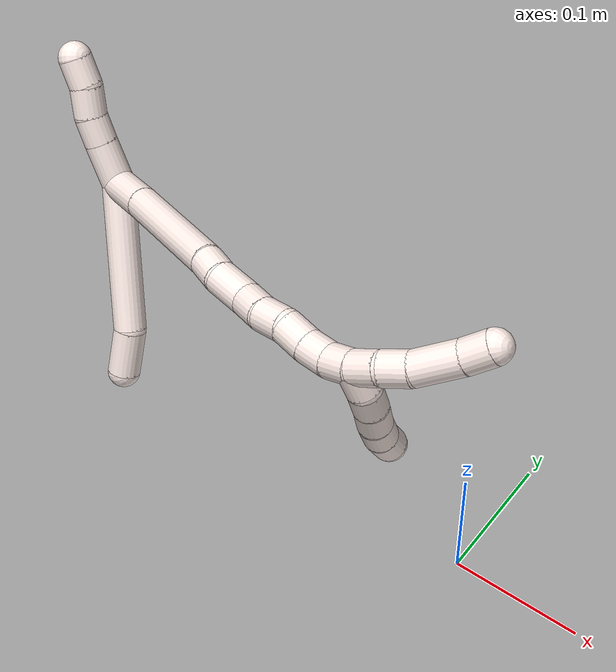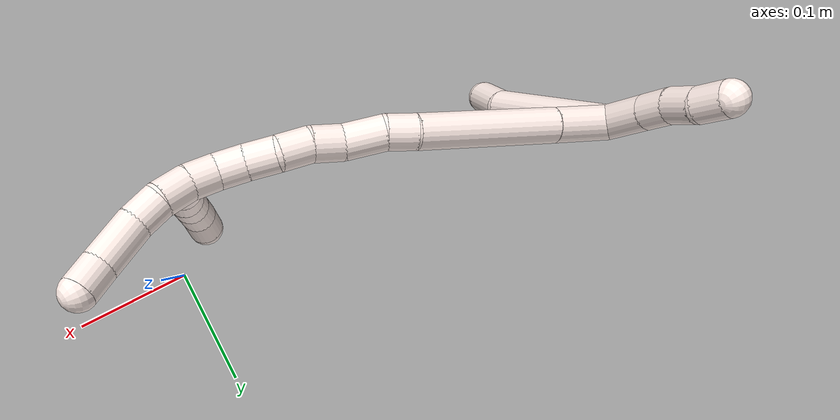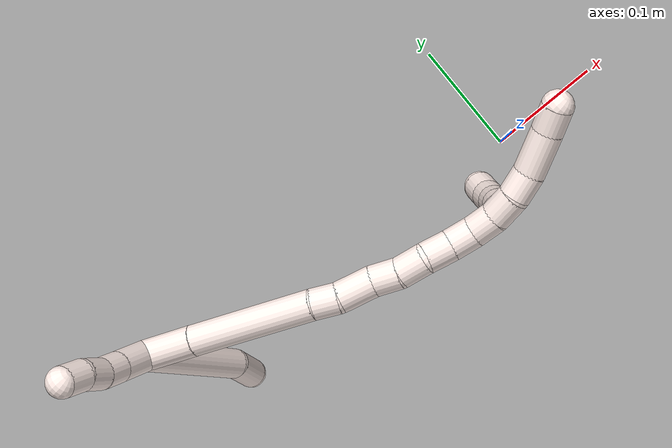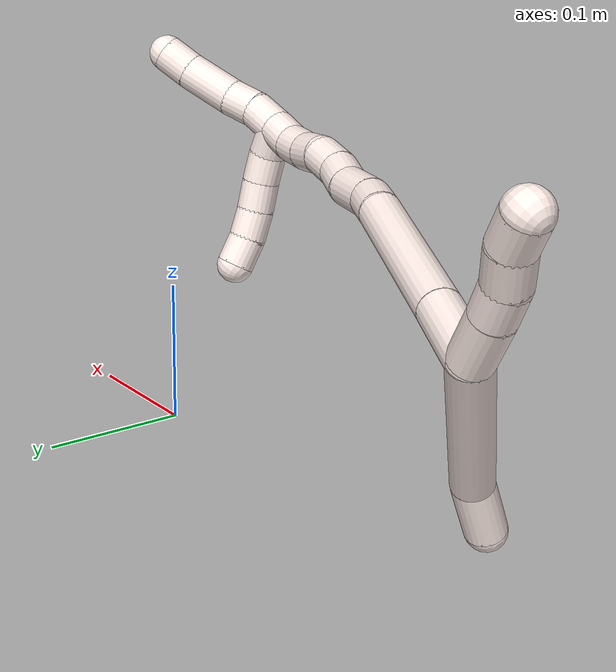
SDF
<sdf version="1.7">
 <world name="default">
  <model name="11">
   <static>0</static>
   <link name="11">
    <collision name="collision-cylinder-e_1_2_8">
     <pose>0.00716 -0.055685 0.006645 1.45203 0.126986 0.112766</pose>
     <geometry><cylinder><radius>0.0125</radius><length>0.113071</length></cylinder></geometry>
     <surface>
      <friction><ode><mu>1.16</mu><mu2>1.16</mu2><slip1>0</slip1><slip2>0</slip2></ode></friction>
      <contact><ode><kp>1e+06</kp><kd>1</kd><max_vel>0</max_vel><min_depth>0.001</min_depth></ode></contact>
     </surface>
    </collision>
    <visual name="visual-cylinder-e_1_2_8">
     <pose>0.00716 -0.055685 0.006645 1.45203 0.126986 0.112766</pose>
     <geometry><cylinder><radius>0.0125</radius><length>0.113071</length></cylinder></geometry>
     <material><ambient>1 0.933333 0.909804 1</ambient></material>
    </visual>
    <collision name="collision-cylinder-e_2_8_6">
     <pose>0.016491 -0.12811 0.020773 1.15043 0.117865 0.076469</pose>
     <geometry><cylinder><radius>0.0125</radius><length>0.036929</length></cylinder></geometry>
     <surface>
      <friction><ode><mu>1.16</mu><mu2>1.16</mu2><slip1>0</slip1><slip2>0</slip2></ode></friction>
      <contact><ode><kp>1e+06</kp><kd>1</kd><max_vel>0</max_vel><min_depth>0.001</min_depth></ode></contact>
     </surface>
    </collision>
    <visual name="visual-cylinder-e_2_8_6">
     <pose>0.016491 -0.12811 0.020773 1.15043 0.117865 0.076469</pose>
     <geometry><cylinder><radius>0.0125</radius><length>0.036929</length></cylinder></geometry>
     <material><ambient>1 0.933333 0.909804 1</ambient></material>
    </visual>
    <collision name="collision-cylinder-e_1_2_9">
     <pose>0.002594 0.016786 0.000653 -1.5319 0.153203 -0.147378</pose>
     <geometry><cylinder><radius>0.0125</radius><length>0.033997</length></cylinder></geometry>
     <surface>
      <friction><ode><mu>1.16</mu><mu2>1.16</mu2><slip1>0</slip1><slip2>0</slip2></ode></friction>
      <contact><ode><kp>1e+06</kp><kd>1</kd><max_vel>0</max_vel><min_depth>0.001</min_depth></ode></contact>
     </surface>
    </collision>
    <visual name="visual-cylinder-e_1_2_9">
     <pose>0.002594 0.016786 0.000653 -1.5319 0.153203 -0.147378</pose>
     <geometry><cylinder><radius>0.0125</radius><length>0.033997</length></cylinder></geometry>
     <material><ambient>1 0.933333 0.909804 1</ambient></material>
    </visual>
    <collision name="collision-cylinder-e_2_9_10">
     <pose>0.006834 0.044039 0.00123 -1.57815 0.156013 -0.157161</pose>
     <geometry><cylinder><radius>0.0125</radius><length>0.02119</length></cylinder></geometry>
     <surface>
      <friction><ode><mu>1.16</mu><mu2>1.16</mu2><slip1>0</slip1><slip2>0</slip2></ode></friction>
      <contact><ode><kp>1e+06</kp><kd>1</kd><max_vel>0</max_vel><min_depth>0.001</min_depth></ode></contact>
     </surface>
    </collision>
    <visual name="visual-cylinder-e_2_9_10">
     <pose>0.006834 0.044039 0.00123 -1.57815 0.156013 -0.157161</pose>
     <geometry><cylinder><radius>0.0125</radius><length>0.02119</length></cylinder></geometry>
     <material><ambient>1 0.933333 0.909804 1</ambient></material>
    </visual>
    <collision name="collision-cylinder-e_3_10_11">
     <pose>0.008546 0.065796 -0.000673 -1.73111 0.00573 -0.006731</pose>
     <geometry><cylinder><radius>0.0125</radius><length>0.022875</length></cylinder></geometry>
     <surface>
      <friction><ode><mu>1.16</mu><mu2>1.16</mu2><slip1>0</slip1><slip2>0</slip2></ode></friction>
      <contact><ode><kp>1e+06</kp><kd>1</kd><max_vel>0</max_vel><min_depth>0.001</min_depth></ode></contact>
     </surface>
    </collision>
    <visual name="visual-cylinder-e_3_10_11">
     <pose>0.008546 0.065796 -0.000673 -1.73111 0.00573 -0.006731</pose>
     <geometry><cylinder><radius>0.0125</radius><length>0.022875</length></cylinder></geometry>
     <material><ambient>1 0.933333 0.909804 1</ambient></material>
    </visual>
    <collision name="collision-cylinder-e_4_11_5">
     <pose>0.009849 0.087972 -0.001949 -1.52031 0.113017 -0.107462</pose>
     <geometry><cylinder><radius>0.0125</radius><length>0.021939</length></cylinder></geometry>
     <surface>
      <friction><ode><mu>1.16</mu><mu2>1.16</mu2><slip1>0</slip1><slip2>0</slip2></ode></friction>
      <contact><ode><kp>1e+06</kp><kd>1</kd><max_vel>0</max_vel><min_depth>0.001</min_depth></ode></contact>
     </surface>
    </collision>
    <visual name="visual-cylinder-e_4_11_5">
     <pose>0.009849 0.087972 -0.001949 -1.52031 0.113017 -0.107462</pose>
     <geometry><cylinder><radius>0.0125</radius><length>0.021939</length></cylinder></geometry>
     <material><ambient>1 0.933333 0.909804 1</ambient></material>
    </visual>
    <collision name="collision-cylinder-e_1_2_12">
     <pose>0.007084 -0.006461 -0.019183 2.81671 0.336627 1.60696</pose>
     <geometry><cylinder><radius>0.0125</radius><length>0.042891</length></cylinder></geometry>
     <surface>
      <friction><ode><mu>1.16</mu><mu2>1.16</mu2><slip1>0</slip1><slip2>0</slip2></ode></friction>
      <contact><ode><kp>1e+06</kp><kd>1</kd><max_vel>0</max_vel><min_depth>0.001</min_depth></ode></contact>
     </surface>
    </collision>
    <visual name="visual-cylinder-e_1_2_12">
     <pose>0.007084 -0.006461 -0.019183 2.81671 0.336627 1.60696</pose>
     <geometry><cylinder><radius>0.0125</radius><length>0.042891</length></cylinder></geometry>
     <material><ambient>1 0.933333 0.909804 1</ambient></material>
    </visual>
    <collision name="collision-cylinder-e_2_12_13">
     <pose>0.030875 -0.02989 -0.082806 2.77687 0.33777 1.49251</pose>
     <geometry><cylinder><radius>0.0125</radius><length>0.100836</length></cylinder></geometry>
     <surface>
      <friction><ode><mu>1.16</mu><mu2>1.16</mu2><slip1>0</slip1><slip2>0</slip2></ode></friction>
      <contact><ode><kp>1e+06</kp><kd>1</kd><max_vel>0</max_vel><min_depth>0.001</min_depth></ode></contact>
     </surface>
    </collision>
    <visual name="visual-cylinder-e_2_12_13">
     <pose>0.030875 -0.02989 -0.082806 2.77687 0.33777 1.49251</pose>
     <geometry><cylinder><radius>0.0125</radius><length>0.100836</length></cylinder></geometry>
     <material><ambient>1 0.933333 0.909804 1</ambient></material>
    </visual>
    <collision name="collision-cylinder-e_3_13_14">
     <pose>0.051192 -0.051608 -0.135856 2.63734 0.351763 1.2078</pose>
     <geometry><cylinder><radius>0.0125</radius><length>0.020951</length></cylinder></geometry>
     <surface>
      <friction><ode><mu>1.16</mu><mu2>1.16</mu2><slip1>0</slip1><slip2>0</slip2></ode></friction>
      <contact><ode><kp>1e+06</kp><kd>1</kd><max_vel>0</max_vel><min_depth>0.001</min_depth></ode></contact>
     </surface>
    </collision>
    <visual name="visual-cylinder-e_3_13_14">
     <pose>0.051192 -0.051608 -0.135856 2.63734 0.351763 1.2078</pose>
     <geometry><cylinder><radius>0.0125</radius><length>0.020951</length></cylinder></geometry>
     <material><ambient>1 0.933333 0.909804 1</ambient></material>
    </visual>
    <collision name="collision-cylinder-e_4_14_15">
     <pose>0.056636 -0.063745 -0.156792 2.60175 0.127042 0.451945</pose>
     <geometry><cylinder><radius>0.0125</radius><length>0.028973</length></cylinder></geometry>
     <surface>
      <friction><ode><mu>1.16</mu><mu2>1.16</mu2><slip1>0</slip1><slip2>0</slip2></ode></friction>
      <contact><ode><kp>1e+06</kp><kd>1</kd><max_vel>0</max_vel><min_depth>0.001</min_depth></ode></contact>
     </surface>
    </collision>
    <visual name="visual-cylinder-e_4_14_15">
     <pose>0.056636 -0.063745 -0.156792 2.60175 0.127042 0.451945</pose>
     <geometry><cylinder><radius>0.0125</radius><length>0.028973</length></cylinder></geometry>
     <material><ambient>1 0.933333 0.909804 1</ambient></material>
    </visual>
    <collision name="collision-cylinder-e_5_15_16">
     <pose>0.062067 -0.074906 -0.178791 2.76957 0.333352 1.45896</pose>
     <geometry><cylinder><radius>0.0125</radius><length>0.021976</length></cylinder></geometry>
     <surface>
      <friction><ode><mu>1.16</mu><mu2>1.16</mu2><slip1>0</slip1><slip2>0</slip2></ode></friction>
      <contact><ode><kp>1e+06</kp><kd>1</kd><max_vel>0</max_vel><min_depth>0.001</min_depth></ode></contact>
     </surface>
    </collision>
    <visual name="visual-cylinder-e_5_15_16">
     <pose>0.062067 -0.074906 -0.178791 2.76957 0.333352 1.45896</pose>
     <geometry><cylinder><radius>0.0125</radius><length>0.021976</length></cylinder></geometry>
     <material><ambient>1 0.933333 0.909804 1</ambient></material>
    </visual>
    <collision name="collision-cylinder-e_6_16_17">
     <pose>0.066951 -0.082285 -0.198916 2.80945 0.115987 0.666896</pose>
     <geometry><cylinder><radius>0.0125</radius><length>0.022261</length></cylinder></geometry>
     <surface>
      <friction><ode><mu>1.16</mu><mu2>1.16</mu2><slip1>0</slip1><slip2>0</slip2></ode></friction>
      <contact><ode><kp>1e+06</kp><kd>1</kd><max_vel>0</max_vel><min_depth>0.001</min_depth></ode></contact>
     </surface>
    </collision>
    <visual name="visual-cylinder-e_6_16_17">
     <pose>0.066951 -0.082285 -0.198916 2.80945 0.115987 0.666896</pose>
     <geometry><cylinder><radius>0.0125</radius><length>0.022261</length></cylinder></geometry>
     <material><ambient>1 0.933333 0.909804 1</ambient></material>
    </visual>
    <collision name="collision-cylinder-e_7_17_18">
     <pose>0.069033 -0.092353 -0.21791 2.49396 0.074005 0.219709</pose>
     <geometry><cylinder><radius>0.0125</radius><length>0.021483</length></cylinder></geometry>
     <surface>
      <friction><ode><mu>1.16</mu><mu2>1.16</mu2><slip1>0</slip1><slip2>0</slip2></ode></friction>
      <contact><ode><kp>1e+06</kp><kd>1</kd><max_vel>0</max_vel><min_depth>0.001</min_depth></ode></contact>
     </surface>
    </collision>
    <visual name="visual-cylinder-e_7_17_18">
     <pose>0.069033 -0.092353 -0.21791 2.49396 0.074005 0.219709</pose>
     <geometry><cylinder><radius>0.0125</radius><length>0.021483</length></cylinder></geometry>
     <material><ambient>1 0.933333 0.909804 1</ambient></material>
    </visual>
    <collision name="collision-cylinder-e_8_18_19">
     <pose>0.070492 -0.103408 -0.235484 2.67112 0.065499 0.271698</pose>
     <geometry><cylinder><radius>0.0125</radius><length>0.020306</length></cylinder></geometry>
     <surface>
      <friction><ode><mu>1.16</mu><mu2>1.16</mu2><slip1>0</slip1><slip2>0</slip2></ode></friction>
      <contact><ode><kp>1e+06</kp><kd>1</kd><max_vel>0</max_vel><min_depth>0.001</min_depth></ode></contact>
     </surface>
    </collision>
    <visual name="visual-cylinder-e_8_18_19">
     <pose>0.070492 -0.103408 -0.235484 2.67112 0.065499 0.271698</pose>
     <geometry><cylinder><radius>0.0125</radius><length>0.020306</length></cylinder></geometry>
     <material><ambient>1 0.933333 0.909804 1</ambient></material>
    </visual>
    <collision name="collision-cylinder-e_9_19_1">
     <pose>0.071765 -0.109946 -0.254469 2.94856 0.059904 0.600239</pose>
     <geometry><cylinder><radius>0.0125</radius><length>0.020324</length></cylinder></geometry>
     <surface>
      <friction><ode><mu>1.16</mu><mu2>1.16</mu2><slip1>0</slip1><slip2>0</slip2></ode></friction>
      <contact><ode><kp>1e+06</kp><kd>1</kd><max_vel>0</max_vel><min_depth>0.001</min_depth></ode></contact>
     </surface>
    </collision>
    <visual name="visual-cylinder-e_9_19_1">
     <pose>0.071765 -0.109946 -0.254469 2.94856 0.059904 0.600239</pose>
     <geometry><cylinder><radius>0.0125</radius><length>0.020324</length></cylinder></geometry>
     <material><ambient>1 0.933333 0.909804 1</ambient></material>
    </visual>
    <collision name="collision-cylinder-e_1_1_20">
     <pose>0.071389 -0.112161 -0.275379 3.11704 -0.089571 -2.60675</pose>
     <geometry><cylinder><radius>0.0125</radius><length>0.022004</length></cylinder></geometry>
     <surface>
      <friction><ode><mu>1.16</mu><mu2>1.16</mu2><slip1>0</slip1><slip2>0</slip2></ode></friction>
      <contact><ode><kp>1e+06</kp><kd>1</kd><max_vel>0</max_vel><min_depth>0.001</min_depth></ode></contact>
     </surface>
    </collision>
    <visual name="visual-cylinder-e_1_1_20">
     <pose>0.071389 -0.112161 -0.275379 3.11704 -0.089571 -2.60675</pose>
     <geometry><cylinder><radius>0.0125</radius><length>0.022004</length></cylinder></geometry>
     <material><ambient>1 0.933333 0.909804 1</ambient></material>
    </visual>
    <collision name="collision-cylinder-e_2_20_21">
     <pose>0.067204 -0.113457 -0.29638 3.03977 -0.306946 -2.50516</pose>
     <geometry><cylinder><radius>0.0125</radius><length>0.021187</length></cylinder></geometry>
     <surface>
      <friction><ode><mu>1.16</mu><mu2>1.16</mu2><slip1>0</slip1><slip2>0</slip2></ode></friction>
      <contact><ode><kp>1e+06</kp><kd>1</kd><max_vel>0</max_vel><min_depth>0.001</min_depth></ode></contact>
     </surface>
    </collision>
    <visual name="visual-cylinder-e_2_20_21">
     <pose>0.067204 -0.113457 -0.29638 3.03977 -0.306946 -2.50516</pose>
     <geometry><cylinder><radius>0.0125</radius><length>0.021187</length></cylinder></geometry>
     <material><ambient>1 0.933333 0.909804 1</ambient></material>
    </visual>
    <collision name="collision-cylinder-e_3_21_22">
     <pose>0.057602 -0.112419 -0.322917 -3.01706 -0.367643 2.49446</pose>
     <geometry><cylinder><radius>0.0125</radius><length>0.035618</length></cylinder></geometry>
     <surface>
      <friction><ode><mu>1.16</mu><mu2>1.16</mu2><slip1>0</slip1><slip2>0</slip2></ode></friction>
      <contact><ode><kp>1e+06</kp><kd>1</kd><max_vel>0</max_vel><min_depth>0.001</min_depth></ode></contact>
     </surface>
    </collision>
    <visual name="visual-cylinder-e_3_21_22">
     <pose>0.057602 -0.112419 -0.322917 -3.01706 -0.367643 2.49446</pose>
     <geometry><cylinder><radius>0.0125</radius><length>0.035618</length></cylinder></geometry>
     <material><ambient>1 0.933333 0.909804 1</ambient></material>
    </visual>
    <collision name="collision-cylinder-e_4_22_4">
     <pose>0.047676 -0.108096 -0.34914 -2.91363 -0.339161 1.96293</pose>
     <geometry><cylinder><radius>0.0125</radius><length>0.021191</length></cylinder></geometry>
     <surface>
      <friction><ode><mu>1.16</mu><mu2>1.16</mu2><slip1>0</slip1><slip2>0</slip2></ode></friction>
      <contact><ode><kp>1e+06</kp><kd>1</kd><max_vel>0</max_vel><min_depth>0.001</min_depth></ode></contact>
     </surface>
    </collision>
    <visual name="visual-cylinder-e_4_22_4">
     <pose>0.047676 -0.108096 -0.34914 -2.91363 -0.339161 1.96293</pose>
     <geometry><cylinder><radius>0.0125</radius><length>0.021191</length></cylinder></geometry>
     <material><ambient>1 0.933333 0.909804 1</ambient></material>
    </visual>
    <collision name="collision-cylinder-e_1_1_23">
     <pose>0.068624 -0.121111 -0.263445 1.46495 -0.384318 -0.346461</pose>
     <geometry><cylinder><radius>0.0125</radius><length>0.02</length></cylinder></geometry>
     <surface>
      <friction><ode><mu>1.16</mu><mu2>1.16</mu2><slip1>0</slip1><slip2>0</slip2></ode></friction>
      <contact><ode><kp>1e+06</kp><kd>1</kd><max_vel>0</max_vel><min_depth>0.001</min_depth></ode></contact>
     </surface>
    </collision>
    <visual name="visual-cylinder-e_1_1_23">
     <pose>0.068624 -0.121111 -0.263445 1.46495 -0.384318 -0.346461</pose>
     <geometry><cylinder><radius>0.0125</radius><length>0.02</length></cylinder></geometry>
     <material><ambient>1 0.933333 0.909804 1</ambient></material>
    </visual>
    <collision name="collision-cylinder-e_2_23_24">
     <pose>0.060185 -0.138497 -0.259104 1.18029 -0.488129 -0.330539</pose>
     <geometry><cylinder><radius>0.0125</radius><length>0.02</length></cylinder></geometry>
     <surface>
      <friction><ode><mu>1.16</mu><mu2>1.16</mu2><slip1>0</slip1><slip2>0</slip2></ode></friction>
      <contact><ode><kp>1e+06</kp><kd>1</kd><max_vel>0</max_vel><min_depth>0.001</min_depth></ode></contact>
     </surface>
    </collision>
    <visual name="visual-cylinder-e_2_23_24">
     <pose>0.060185 -0.138497 -0.259104 1.18029 -0.488129 -0.330539</pose>
     <geometry><cylinder><radius>0.0125</radius><length>0.02</length></cylinder></geometry>
     <material><ambient>1 0.933333 0.909804 1</ambient></material>
    </visual>
    <collision name="collision-cylinder-e_3_24_25">
     <pose>0.050779 -0.154363 -0.251443 1.06153 -0.491091 -0.292086</pose>
     <geometry><cylinder><radius>0.0125</radius><length>0.02</length></cylinder></geometry>
     <surface>
      <friction><ode><mu>1.16</mu><mu2>1.16</mu2><slip1>0</slip1><slip2>0</slip2></ode></friction>
      <contact><ode><kp>1e+06</kp><kd>1</kd><max_vel>0</max_vel><min_depth>0.001</min_depth></ode></contact>
     </surface>
    </collision>
    <visual name="visual-cylinder-e_3_24_25">
     <pose>0.050779 -0.154363 -0.251443 1.06153 -0.491091 -0.292086</pose>
     <geometry><cylinder><radius>0.0125</radius><length>0.02</length></cylinder></geometry>
     <material><ambient>1 0.933333 0.909804 1</ambient></material>
    </visual>
    <collision name="collision-cylinder-e_4_25_26">
     <pose>0.040309 -0.169068 -0.242924 1.0287 -0.61317 -0.354028</pose>
     <geometry><cylinder><radius>0.0125</radius><length>0.02</length></cylinder></geometry>
     <surface>
      <friction><ode><mu>1.16</mu><mu2>1.16</mu2><slip1>0</slip1><slip2>0</slip2></ode></friction>
      <contact><ode><kp>1e+06</kp><kd>1</kd><max_vel>0</max_vel><min_depth>0.001</min_depth></ode></contact>
     </surface>
    </collision>
    <visual name="visual-cylinder-e_4_25_26">
     <pose>0.040309 -0.169068 -0.242924 1.0287 -0.61317 -0.354028</pose>
     <geometry><cylinder><radius>0.0125</radius><length>0.02</length></cylinder></geometry>
     <material><ambient>1 0.933333 0.909804 1</ambient></material>
    </visual>
    <collision name="collision-cylinder-e_5_26_3">
     <pose>0.027516 -0.182212 -0.235129 1.04327 -0.780774 -0.464481</pose>
     <geometry><cylinder><radius>0.0125</radius><length>0.02</length></cylinder></geometry>
     <surface>
      <friction><ode><mu>1.16</mu><mu2>1.16</mu2><slip1>0</slip1><slip2>0</slip2></ode></friction>
      <contact><ode><kp>1e+06</kp><kd>1</kd><max_vel>0</max_vel><min_depth>0.001</min_depth></ode></contact>
     </surface>
    </collision>
    <visual name="visual-cylinder-e_5_26_3">
     <pose>0.027516 -0.182212 -0.235129 1.04327 -0.780774 -0.464481</pose>
     <geometry><cylinder><radius>0.0125</radius><length>0.02</length></cylinder></geometry>
     <material><ambient>1 0.933333 0.909804 1</ambient></material>
    </visual>
    <collision name="collision-sphere-3">
     <pose>0.020478 -0.18835 -0.231553 0 -0 0</pose>
     <geometry><sphere><radius>0.0125</radius></sphere></geometry>
     <surface>
      <friction><ode><mu>1.16</mu><mu2>1.16</mu2><slip1>0</slip1><slip2>0</slip2></ode></friction>
      <contact><ode><kp>1e+06</kp><kd>1</kd><max_vel>0</max_vel><min_depth>0.001</min_depth></ode></contact>
     </surface>
    </collision>
    <visual name="visual-sphere-3">
     <pose>0.020478 -0.18835 -0.231553 0 -0 0</pose>
     <geometry><sphere><radius>0.0125</radius></sphere></geometry>
     <material><ambient>1 0.933333 0.909804 1</ambient></material>
    </visual>
    <collision name="collision-sphere-26">
     <pose>0.034554 -0.176074 -0.238705 0 -0 0</pose>
     <geometry><sphere><radius>0.0125</radius></sphere></geometry>
     <surface>
      <friction><ode><mu>1.16</mu><mu2>1.16</mu2><slip1>0</slip1><slip2>0</slip2></ode></friction>
      <contact><ode><kp>1e+06</kp><kd>1</kd><max_vel>0</max_vel><min_depth>0.001</min_depth></ode></contact>
     </surface>
    </collision>
    <visual name="visual-sphere-26">
     <pose>0.034554 -0.176074 -0.238705 0 -0 0</pose>
     <geometry><sphere><radius>0.0125</radius></sphere></geometry>
     <material><ambient>1 0.933333 0.909804 1</ambient></material>
    </visual>
    <collision name="collision-sphere-25">
     <pose>0.046063 -0.162062 -0.247144 0 -0 0</pose>
     <geometry><sphere><radius>0.0125</radius></sphere></geometry>
     <surface>
      <friction><ode><mu>1.16</mu><mu2>1.16</mu2><slip1>0</slip1><slip2>0</slip2></ode></friction>
      <contact><ode><kp>1e+06</kp><kd>1</kd><max_vel>0</max_vel><min_depth>0.001</min_depth></ode></contact>
     </surface>
    </collision>
    <visual name="visual-sphere-25">
     <pose>0.046063 -0.162062 -0.247144 0 -0 0</pose>
     <geometry><sphere><radius>0.0125</radius></sphere></geometry>
     <material><ambient>1 0.933333 0.909804 1</ambient></material>
    </visual>
    <collision name="collision-sphere-24">
     <pose>0.055495 -0.146664 -0.255742 0 -0 0</pose>
     <geometry><sphere><radius>0.0125</radius></sphere></geometry>
     <surface>
      <friction><ode><mu>1.16</mu><mu2>1.16</mu2><slip1>0</slip1><slip2>0</slip2></ode></friction>
      <contact><ode><kp>1e+06</kp><kd>1</kd><max_vel>0</max_vel><min_depth>0.001</min_depth></ode></contact>
     </surface>
    </collision>
    <visual name="visual-sphere-24">
     <pose>0.055495 -0.146664 -0.255742 0 -0 0</pose>
     <geometry><sphere><radius>0.0125</radius></sphere></geometry>
     <material><ambient>1 0.933333 0.909804 1</ambient></material>
    </visual>
    <collision name="collision-sphere-23">
     <pose>0.064875 -0.130329 -0.262466 0 -0 0</pose>
     <geometry><sphere><radius>0.0125</radius></sphere></geometry>
     <surface>
      <friction><ode><mu>1.16</mu><mu2>1.16</mu2><slip1>0</slip1><slip2>0</slip2></ode></friction>
      <contact><ode><kp>1e+06</kp><kd>1</kd><max_vel>0</max_vel><min_depth>0.001</min_depth></ode></contact>
     </surface>
    </collision>
    <visual name="visual-sphere-23">
     <pose>0.064875 -0.130329 -0.262466 0 -0 0</pose>
     <geometry><sphere><radius>0.0125</radius></sphere></geometry>
     <material><ambient>1 0.933333 0.909804 1</ambient></material>
    </visual>
    <collision name="collision-sphere-4">
     <pose>0.044151 -0.105838 -0.358873 0 -0 0</pose>
     <geometry><sphere><radius>0.0125</radius></sphere></geometry>
     <surface>
      <friction><ode><mu>1.16</mu><mu2>1.16</mu2><slip1>0</slip1><slip2>0</slip2></ode></friction>
      <contact><ode><kp>1e+06</kp><kd>1</kd><max_vel>0</max_vel><min_depth>0.001</min_depth></ode></contact>
     </surface>
    </collision>
    <visual name="visual-sphere-4">
     <pose>0.044151 -0.105838 -0.358873 0 -0 0</pose>
     <geometry><sphere><radius>0.0125</radius></sphere></geometry>
     <material><ambient>1 0.933333 0.909804 1</ambient></material>
    </visual>
    <collision name="collision-sphere-22">
     <pose>0.051201 -0.110355 -0.339407 0 -0 0</pose>
     <geometry><sphere><radius>0.0125</radius></sphere></geometry>
     <surface>
      <friction><ode><mu>1.16</mu><mu2>1.16</mu2><slip1>0</slip1><slip2>0</slip2></ode></friction>
      <contact><ode><kp>1e+06</kp><kd>1</kd><max_vel>0</max_vel><min_depth>0.001</min_depth></ode></contact>
     </surface>
    </collision>
    <visual name="visual-sphere-22">
     <pose>0.051201 -0.110355 -0.339407 0 -0 0</pose>
     <geometry><sphere><radius>0.0125</radius></sphere></geometry>
     <material><ambient>1 0.933333 0.909804 1</ambient></material>
    </visual>
    <collision name="collision-sphere-21">
     <pose>0.064003 -0.114483 -0.306426 0 -0 0</pose>
     <geometry><sphere><radius>0.0125</radius></sphere></geometry>
     <surface>
      <friction><ode><mu>1.16</mu><mu2>1.16</mu2><slip1>0</slip1><slip2>0</slip2></ode></friction>
      <contact><ode><kp>1e+06</kp><kd>1</kd><max_vel>0</max_vel><min_depth>0.001</min_depth></ode></contact>
     </surface>
    </collision>
    <visual name="visual-sphere-21">
     <pose>0.064003 -0.114483 -0.306426 0 -0 0</pose>
     <geometry><sphere><radius>0.0125</radius></sphere></geometry>
     <material><ambient>1 0.933333 0.909804 1</ambient></material>
    </visual>
    <collision name="collision-sphere-20">
     <pose>0.070405 -0.11243 -0.286334 0 -0 0</pose>
     <geometry><sphere><radius>0.0125</radius></sphere></geometry>
     <surface>
      <friction><ode><mu>1.16</mu><mu2>1.16</mu2><slip1>0</slip1><slip2>0</slip2></ode></friction>
      <contact><ode><kp>1e+06</kp><kd>1</kd><max_vel>0</max_vel><min_depth>0.001</min_depth></ode></contact>
     </surface>
    </collision>
    <visual name="visual-sphere-20">
     <pose>0.070405 -0.11243 -0.286334 0 -0 0</pose>
     <geometry><sphere><radius>0.0125</radius></sphere></geometry>
     <material><ambient>1 0.933333 0.909804 1</ambient></material>
    </visual>
    <collision name="collision-sphere-11">
     <pose>0.008612 0.077086 -0.002499 0 -0 0</pose>
     <geometry><sphere><radius>0.0125</radius></sphere></geometry>
     <surface>
      <friction><ode><mu>1.16</mu><mu2>1.16</mu2><slip1>0</slip1><slip2>0</slip2></ode></friction>
      <contact><ode><kp>1e+06</kp><kd>1</kd><max_vel>0</max_vel><min_depth>0.001</min_depth></ode></contact>
     </surface>
    </collision>
    <visual name="visual-sphere-11">
     <pose>0.008612 0.077086 -0.002499 0 -0 0</pose>
     <geometry><sphere><radius>0.0125</radius></sphere></geometry>
     <material><ambient>1 0.933333 0.909804 1</ambient></material>
    </visual>
    <collision name="collision-sphere-10">
     <pose>0.008481 0.054505 0.001153 0 -0 0</pose>
     <geometry><sphere><radius>0.0125</radius></sphere></geometry>
     <surface>
      <friction><ode><mu>1.16</mu><mu2>1.16</mu2><slip1>0</slip1><slip2>0</slip2></ode></friction>
      <contact><ode><kp>1e+06</kp><kd>1</kd><max_vel>0</max_vel><min_depth>0.001</min_depth></ode></contact>
     </surface>
    </collision>
    <visual name="visual-sphere-10">
     <pose>0.008481 0.054505 0.001153 0 -0 0</pose>
     <geometry><sphere><radius>0.0125</radius></sphere></geometry>
     <material><ambient>1 0.933333 0.909804 1</ambient></material>
    </visual>
    <collision name="collision-sphere-6">
     <pose>0.018662 -0.14485 0.028256 0 -0 0</pose>
     <geometry><sphere><radius>0.0125</radius></sphere></geometry>
     <surface>
      <friction><ode><mu>1.16</mu><mu2>1.16</mu2><slip1>0</slip1><slip2>0</slip2></ode></friction>
      <contact><ode><kp>1e+06</kp><kd>1</kd><max_vel>0</max_vel><min_depth>0.001</min_depth></ode></contact>
     </surface>
    </collision>
    <visual name="visual-sphere-6">
     <pose>0.018662 -0.14485 0.028256 0 -0 0</pose>
     <geometry><sphere><radius>0.0125</radius></sphere></geometry>
     <material><ambient>1 0.933333 0.909804 1</ambient></material>
    </visual>
    <collision name="collision-sphere-9">
     <pose>0.005188 0.033573 0.001307 0 -0 0</pose>
     <geometry><sphere><radius>0.0125</radius></sphere></geometry>
     <surface>
      <friction><ode><mu>1.16</mu><mu2>1.16</mu2><slip1>0</slip1><slip2>0</slip2></ode></friction>
      <contact><ode><kp>1e+06</kp><kd>1</kd><max_vel>0</max_vel><min_depth>0.001</min_depth></ode></contact>
     </surface>
    </collision>
    <visual name="visual-sphere-9">
     <pose>0.005188 0.033573 0.001307 0 -0 0</pose>
     <geometry><sphere><radius>0.0125</radius></sphere></geometry>
     <material><ambient>1 0.933333 0.909804 1</ambient></material>
    </visual>
    <collision name="collision-sphere-2">
     <geometry><sphere><radius>0.0125</radius></sphere></geometry>
     <surface>
      <friction><ode><mu>1.16</mu><mu2>1.16</mu2><slip1>0</slip1><slip2>0</slip2></ode></friction>
      <contact><ode><kp>1e+06</kp><kd>1</kd><max_vel>0</max_vel><min_depth>0.001</min_depth></ode></contact>
     </surface>
    </collision>
    <visual name="visual-sphere-2">
     <geometry><sphere><radius>0.0125</radius></sphere></geometry>
     <material><ambient>1 0.933333 0.909804 1</ambient></material>
    </visual>
    <collision name="collision-sphere-19">
     <pose>0.071156 -0.108 -0.244514 0 -0 0</pose>
     <geometry><sphere><radius>0.0125</radius></sphere></geometry>
     <surface>
      <friction><ode><mu>1.16</mu><mu2>1.16</mu2><slip1>0</slip1><slip2>0</slip2></ode></friction>
      <contact><ode><kp>1e+06</kp><kd>1</kd><max_vel>0</max_vel><min_depth>0.001</min_depth></ode></contact>
     </surface>
    </collision>
    <visual name="visual-sphere-19">
     <pose>0.071156 -0.108 -0.244514 0 -0 0</pose>
     <geometry><sphere><radius>0.0125</radius></sphere></geometry>
     <material><ambient>1 0.933333 0.909804 1</ambient></material>
    </visual>
    <collision name="collision-sphere-8">
     <pose>0.01432 -0.11137 0.01329 0 -0 0</pose>
     <geometry><sphere><radius>0.0125</radius></sphere></geometry>
     <surface>
      <friction><ode><mu>1.16</mu><mu2>1.16</mu2><slip1>0</slip1><slip2>0</slip2></ode></friction>
      <contact><ode><kp>1e+06</kp><kd>1</kd><max_vel>0</max_vel><min_depth>0.001</min_depth></ode></contact>
     </surface>
    </collision>
    <visual name="visual-sphere-8">
     <pose>0.01432 -0.11137 0.01329 0 -0 0</pose>
     <geometry><sphere><radius>0.0125</radius></sphere></geometry>
     <material><ambient>1 0.933333 0.909804 1</ambient></material>
    </visual>
    <collision name="collision-sphere-5">
     <pose>0.011086 0.098857 -0.001399 0 -0 0</pose>
     <geometry><sphere><radius>0.0125</radius></sphere></geometry>
     <surface>
      <friction><ode><mu>1.16</mu><mu2>1.16</mu2><slip1>0</slip1><slip2>0</slip2></ode></friction>
      <contact><ode><kp>1e+06</kp><kd>1</kd><max_vel>0</max_vel><min_depth>0.001</min_depth></ode></contact>
     </surface>
    </collision>
    <visual name="visual-sphere-5">
     <pose>0.011086 0.098857 -0.001399 0 -0 0</pose>
     <geometry><sphere><radius>0.0125</radius></sphere></geometry>
     <material><ambient>1 0.933333 0.909804 1</ambient></material>
    </visual>
    <collision name="collision-sphere-12">
     <pose>0.014167 -0.012922 -0.038366 0 -0 0</pose>
     <geometry><sphere><radius>0.0125</radius></sphere></geometry>
     <surface>
      <friction><ode><mu>1.16</mu><mu2>1.16</mu2><slip1>0</slip1><slip2>0</slip2></ode></friction>
      <contact><ode><kp>1e+06</kp><kd>1</kd><max_vel>0</max_vel><min_depth>0.001</min_depth></ode></contact>
     </surface>
    </collision>
    <visual name="visual-sphere-12">
     <pose>0.014167 -0.012922 -0.038366 0 -0 0</pose>
     <geometry><sphere><radius>0.0125</radius></sphere></geometry>
     <material><ambient>1 0.933333 0.909804 1</ambient></material>
    </visual>
    <collision name="collision-sphere-13">
     <pose>0.047582 -0.046857 -0.127246 0 -0 0</pose>
     <geometry><sphere><radius>0.0125</radius></sphere></geometry>
     <surface>
      <friction><ode><mu>1.16</mu><mu2>1.16</mu2><slip1>0</slip1><slip2>0</slip2></ode></friction>
      <contact><ode><kp>1e+06</kp><kd>1</kd><max_vel>0</max_vel><min_depth>0.001</min_depth></ode></contact>
     </surface>
    </collision>
    <visual name="visual-sphere-13">
     <pose>0.047582 -0.046857 -0.127246 0 -0 0</pose>
     <geometry><sphere><radius>0.0125</radius></sphere></geometry>
     <material><ambient>1 0.933333 0.909804 1</ambient></material>
    </visual>
    <collision name="collision-sphere-14">
     <pose>0.054801 -0.056359 -0.144466 0 -0 0</pose>
     <geometry><sphere><radius>0.0125</radius></sphere></geometry>
     <surface>
      <friction><ode><mu>1.16</mu><mu2>1.16</mu2><slip1>0</slip1><slip2>0</slip2></ode></friction>
      <contact><ode><kp>1e+06</kp><kd>1</kd><max_vel>0</max_vel><min_depth>0.001</min_depth></ode></contact>
     </surface>
    </collision>
    <visual name="visual-sphere-14">
     <pose>0.054801 -0.056359 -0.144466 0 -0 0</pose>
     <geometry><sphere><radius>0.0125</radius></sphere></geometry>
     <material><ambient>1 0.933333 0.909804 1</ambient></material>
    </visual>
    <collision name="collision-sphere-15">
     <pose>0.058472 -0.071131 -0.169118 0 -0 0</pose>
     <geometry><sphere><radius>0.0125</radius></sphere></geometry>
     <surface>
      <friction><ode><mu>1.16</mu><mu2>1.16</mu2><slip1>0</slip1><slip2>0</slip2></ode></friction>
      <contact><ode><kp>1e+06</kp><kd>1</kd><max_vel>0</max_vel><min_depth>0.001</min_depth></ode></contact>
     </surface>
    </collision>
    <visual name="visual-sphere-15">
     <pose>0.058472 -0.071131 -0.169118 0 -0 0</pose>
     <geometry><sphere><radius>0.0125</radius></sphere></geometry>
     <material><ambient>1 0.933333 0.909804 1</ambient></material>
    </visual>
    <collision name="collision-sphere-16">
     <pose>0.065663 -0.07868 -0.188464 0 -0 0</pose>
     <geometry><sphere><radius>0.0125</radius></sphere></geometry>
     <surface>
      <friction><ode><mu>1.16</mu><mu2>1.16</mu2><slip1>0</slip1><slip2>0</slip2></ode></friction>
      <contact><ode><kp>1e+06</kp><kd>1</kd><max_vel>0</max_vel><min_depth>0.001</min_depth></ode></contact>
     </surface>
    </collision>
    <visual name="visual-sphere-16">
     <pose>0.065663 -0.07868 -0.188464 0 -0 0</pose>
     <geometry><sphere><radius>0.0125</radius></sphere></geometry>
     <material><ambient>1 0.933333 0.909804 1</ambient></material>
    </visual>
    <collision name="collision-sphere-17">
     <pose>0.068239 -0.08589 -0.209367 0 -0 0</pose>
     <geometry><sphere><radius>0.0125</radius></sphere></geometry>
     <surface>
      <friction><ode><mu>1.16</mu><mu2>1.16</mu2><slip1>0</slip1><slip2>0</slip2></ode></friction>
      <contact><ode><kp>1e+06</kp><kd>1</kd><max_vel>0</max_vel><min_depth>0.001</min_depth></ode></contact>
     </surface>
    </collision>
    <visual name="visual-sphere-17">
     <pose>0.068239 -0.08589 -0.209367 0 -0 0</pose>
     <geometry><sphere><radius>0.0125</radius></sphere></geometry>
     <material><ambient>1 0.933333 0.909804 1</ambient></material>
    </visual>
    <collision name="collision-sphere-18">
     <pose>0.069827 -0.098815 -0.226453 0 -0 0</pose>
     <geometry><sphere><radius>0.0125</radius></sphere></geometry>
     <surface>
      <friction><ode><mu>1.16</mu><mu2>1.16</mu2><slip1>0</slip1><slip2>0</slip2></ode></friction>
      <contact><ode><kp>1e+06</kp><kd>1</kd><max_vel>0</max_vel><min_depth>0.001</min_depth></ode></contact>
     </surface>
    </collision>
    <visual name="visual-sphere-18">
     <pose>0.069827 -0.098815 -0.226453 0 -0 0</pose>
     <geometry><sphere><radius>0.0125</radius></sphere></geometry>
     <material><ambient>1 0.933333 0.909804 1</ambient></material>
    </visual>
    <collision name="collision-sphere-1">
     <pose>0.072373 -0.111892 -0.264425 0 -0 0</pose>
     <geometry><sphere><radius>0.0125</radius></sphere></geometry>
     <surface>
      <friction><ode><mu>1.16</mu><mu2>1.16</mu2><slip1>0</slip1><slip2>0</slip2></ode></friction>
      <contact><ode><kp>1e+06</kp><kd>1</kd><max_vel>0</max_vel><min_depth>0.001</min_depth></ode></contact>
     </surface>
    </collision>
    <visual name="visual-sphere-1">
     <pose>0.072373 -0.111892 -0.264425 0 -0 0</pose>
     <geometry><sphere><radius>0.0125</radius></sphere></geometry>
     <material><ambient>1 0.933333 0.909804 1</ambient></material>
    </visual>
    <inertial>
     <pose>0.035235 -0.064767 -0.125767 0 -0 0</pose>
     <mass>0.75</mass>
     <inertia>
      <ixx>0.000267</ixx>
      <ixy>0</ixy>
      <ixz>0</ixz>
      <iyy>0.000123</iyy>
      <iyz>0</iyz>
      <izz>9.3e-05</izz>
     </inertia>
    </inertial>
   </link>
   <pose>-0.342723 0.043803 0.155684 2.12378 -0.299082 -1.67806</pose>
  </model>
 </world>
</sdf>
